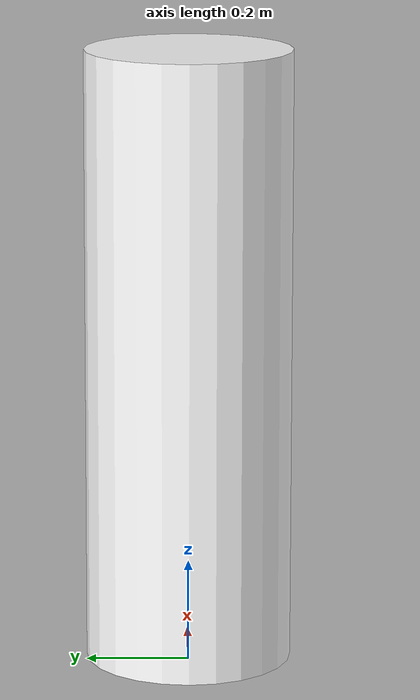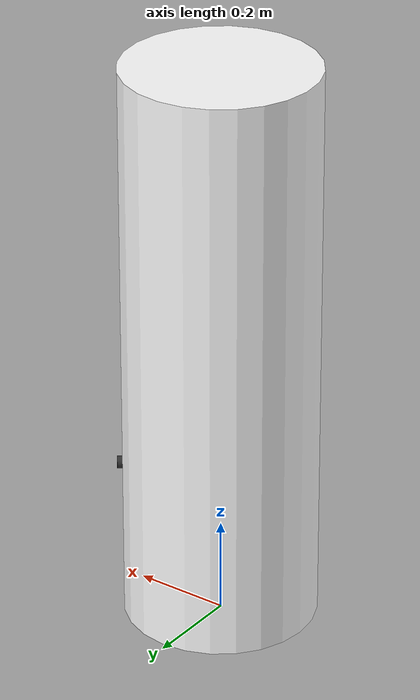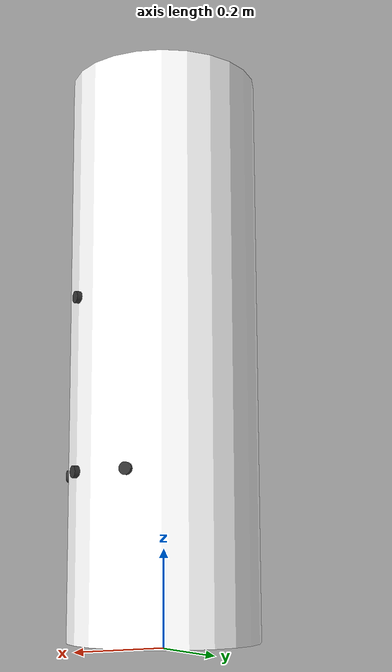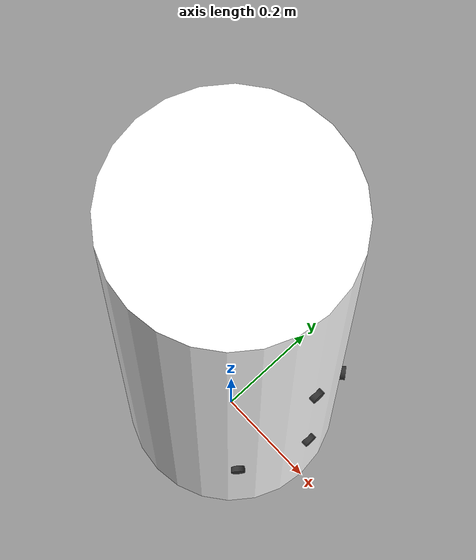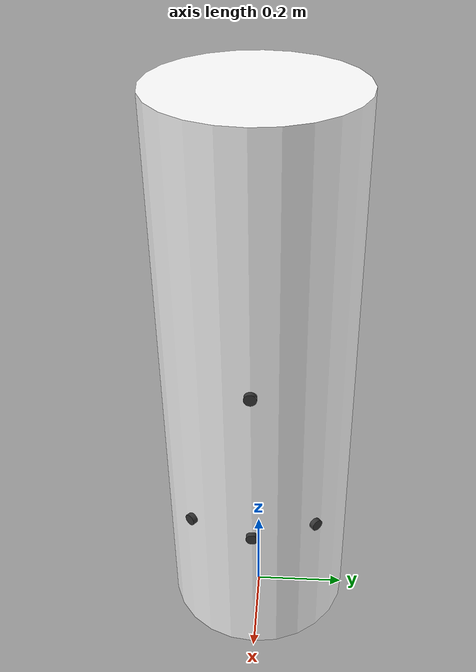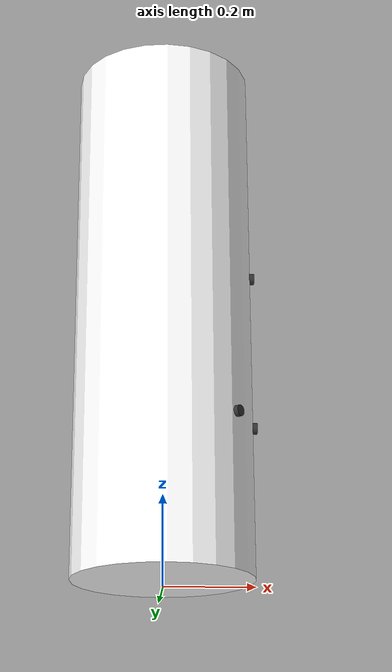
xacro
<?xml version="1.0"?>
<robot xmlns:xacro="http://www.ros.org/wiki/xacro" name="hospital_bot">

  <!-- ================= DIMENSIONS (Meters) ================= -->
  <xacro:property name="radius" value="0.20"/>  <!-- 40cm Diameter -->
  <xacro:property name="height" value="1.20"/>  <!-- 120cm Height -->
  <xacro:property name="lidar_h" value="0.262"/> <!-- LiDAR height -->

  <!-- ULTRASONIC SENSOR DIMENSIONS -->
  <xacro:property name="sensor_radius" value="0.0125"/>
  <xacro:property name="sensor_len" value="0.019"/>

  <!-- ================= COLORS ================= -->
  <material name="white"><color rgba="1 1 1 1"/></material>
  <material name="black"><color rgba="0.1 0.1 0.1 1"/></material>
  <material name="sensor_color"><color rgba="0.2 0.2 0.2 1"/></material>
  <material name="red"><color rgba="0.8 0.0 0.0 1"/></material>

  <!-- ================= BASE FOOTPRINT ================= -->
  <link name="base_footprint"/>

  <!-- ================= BASE LINK (The Body) ================= -->
  <link name="base_link">
    <visual>
      <origin xyz="0 0 ${height/2}" rpy="0 0 0"/>
      <geometry>
        <cylinder length="${height}" radius="${radius}"/>
      </geometry>
      <material name="white"/>
    </visual>
    <collision>
      <origin xyz="0 0 ${height/2}" rpy="0 0 0"/>
      <geometry>
        <cylinder length="${height}" radius="${radius}"/>
      </geometry>
    </collision>
  </link>

  <joint name="base_joint" type="fixed">
    <parent link="base_footprint"/>
    <child link="base_link"/>
    <origin xyz="0 0 0.0125" rpy="0 0 0"/>
  </joint>

  <!-- ================= LIDAR LINK ================= -->
  <link name="laser_frame">
    <visual>
      <origin xyz="0 0 0.01675" rpy="0 0 0"/>
      <geometry>
        <cylinder radius="0.0176" length="0.0335"/>
      </geometry>
      <material name="black"/>
    </visual>
    <collision>
      <origin xyz="0 0 0.01675" rpy="0 0 0"/>
      <geometry>
        <box size="0.039 0.039 0.0335"/>
      </geometry>
    </collision>
  </link>

  <joint name="lidar_joint" type="fixed">
    <parent link="base_link"/>
    <child link="laser_frame"/>

    <origin xyz="${radius - 0.08} 0 ${lidar_h}" rpy="0 0 0"/>
  </joint>

  <!-- ================= IMU LINK ================= -->
  <link name="imu_link"/>

  <joint name="imu_joint" type="fixed">
    <parent link="base_link"/>
    <child link="imu_link"/>
    <origin xyz="0 0 0.20" rpy="0 0 0"/>
  </joint>

  <!-- ================= ToF CLIFF SENSOR ================= -->
  <link name="tof_link">
    <visual>
      <geometry><box size="0.01 0.02 0.01"/></geometry>
      <material name="red"/>
    </visual>
  </link>

  <joint name="tof_joint" type="fixed">
    <parent link="base_link"/>
    <child link="tof_link"/>
    <origin xyz="${radius - 0.01} 0 0.085" rpy="0 0.785 0"/>
  </joint>

<!-- ================= ULTRASONIC SENSORS ================= -->

  <xacro:macro name="ultrasonic_sensor" params="name">
    <link name="${name}">
      <visual>
        <origin xyz="0 0 0" rpy="0 1.5708 0"/>
        <geometry>
          <cylinder length="${sensor_len}" radius="${sensor_radius}"/>
        </geometry>
        <material name="sensor_color"/>
      </visual>
    </link>
  </xacro:macro>

  <xacro:ultrasonic_sensor name="us_link_1"/>
  <xacro:ultrasonic_sensor name="us_link_2"/>
  <xacro:ultrasonic_sensor name="us_link_3"/>
  <xacro:ultrasonic_sensor name="us_link_4"/>

  <!-- ================= SENSOR POSITIONS ================= -->

  <joint name="us_joint_1" type="fixed">
    <parent link="base_link"/>
    <child link="us_link_1"/>
    <origin xyz="${radius} 0 0.34" rpy="0 0 0"/>
  </joint>

  <joint name="us_joint_2" type="fixed">
    <parent link="base_link"/>
    <child link="us_link_2"/>
    <origin xyz="0.153 0.128 0.34" rpy="0 0 0.698"/>
  </joint>

  <joint name="us_joint_3" type="fixed">
    <parent link="base_link"/>
    <child link="us_link_3"/>
    <origin xyz="0.153 -0.128 0.34" rpy="0 0 -0.698"/>
  </joint>

  <joint name="us_joint_4" type="fixed">
    <parent link="base_link"/>
    <child link="us_link_4"/>
    <origin xyz="${radius} 0 0.70" rpy="0 0 0"/>
  </joint>

</robot>
